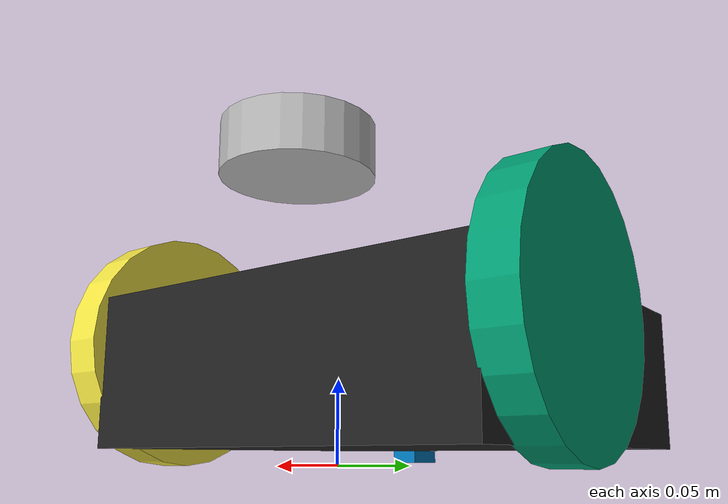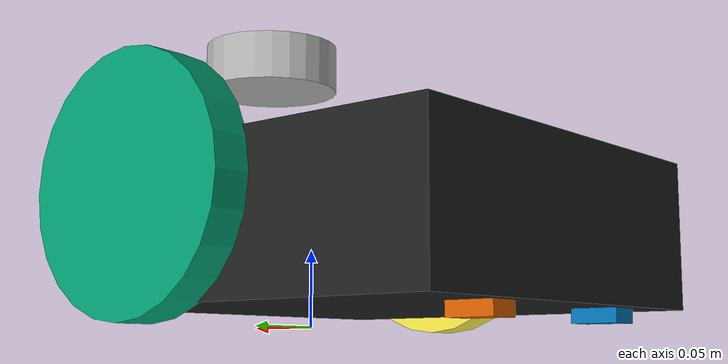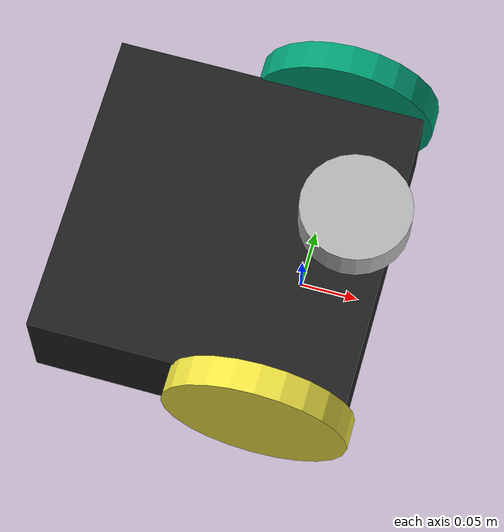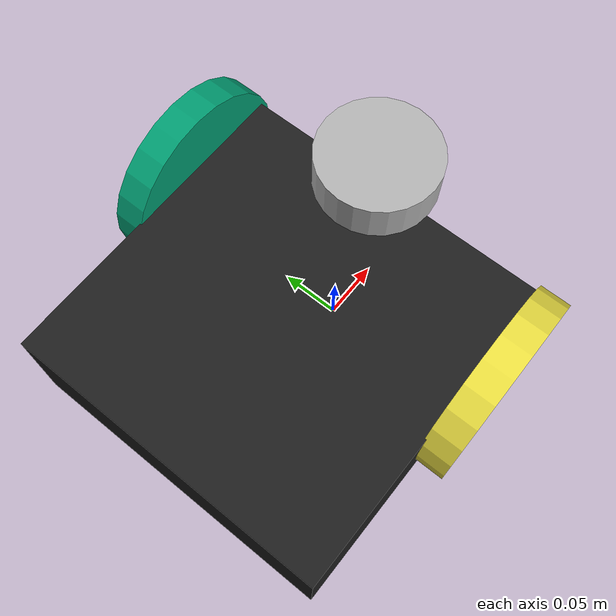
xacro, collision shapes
<?xml version="1.0" ?>
<robot name="turtlebot3_waffle_for_open_manipulator" xmlns:xacro="http://ros.org/wiki/xacro">
  <xacro:include filename="$(find turtlebot3_description)/urdf/common_properties.xacro"/>
  <xacro:include filename="$(find turtlebot3_description)/urdf/turtlebot3_waffle.gazebo.xacro"/>

  <xacro:property name="r200_cam_rgb_px" value="0.005"/>
  <xacro:property name="r200_cam_rgb_py" value="0.018"/>
  <xacro:property name="r200_cam_rgb_pz" value="0.013"/>
  <xacro:property name="r200_cam_depth_offset" value="0.01"/>

  <link name="base_footprint"/>

  <joint name="base_joint" type="fixed">
    <parent link="base_footprint"/>
    <child link="base_link" />
    <origin xyz="0 0 0.010" rpy="0 0 0"/>
  </joint>

  <link name="base_link">
    <visual>
      <origin xyz="-0.064 0 0.0" rpy="0 0 0"/>
      <geometry>
        <mesh filename="package://turtlebot3_description/meshes/bases/waffle_base_for_open_manipulator.stl" scale="0.001 0.001 0.001"/>
      </geometry>
      <material name="light_black"/>
    </visual>

    <collision>
      <origin xyz="-0.064 0 0.047" rpy="0 0 0"/>
      <geometry>
        <box size="0.266 0.266 0.094"/>
      </geometry>
    </collision>

    <inertial>
      <origin xyz="0 0 0" rpy="0 0 0"/>
      <mass value="1.6329594e+00"/>
      <inertia ixx="1.0418769e+05" ixy="1.7327248e+00" ixz="-8.1943898e-01"
               iyy="1.6997442e+05" iyz="3.9896822e+00"
               izz="2.2187284e+05" />
    </inertial>
  </link>

  <joint name="wheel_left_joint" type="continuous">
    <parent link="base_link"/>
    <child link="wheel_left_link"/>
    <origin xyz="0.0 0.144 0.068" rpy="-1.57 0 0"/>
    <axis xyz="0 0 1"/>
  </joint>

  <link name="wheel_left_link">
    <visual>
      <origin xyz="0 0 0" rpy="1.57 0 0"/>
      <geometry>
        <mesh filename="package://turtlebot3_description/meshes/wheels/left_tire.stl" scale="0.0024 0.001 0.0024"/>
      </geometry>
      <material name="dark"/>
    </visual>

    <collision>
      <origin xyz="0 0.001 0" rpy="0 0 0"/>
      <geometry>
        <cylinder length="0.025" radius="0.078"/>
      </geometry>
    </collision>

    <inertial>
      <origin xyz="0 0 0" />
      <mass value="2.8498940e-02" />
      <inertia ixx="1.1175580e-05" ixy="-4.2369783e-11" ixz="-5.9381719e-09"
               iyy="1.1192413e-05" iyz="-1.4400107e-11"
               izz="2.0712558e-05" />
      </inertial>
  </link>

  <joint name="wheel_right_joint" type="continuous">
    <parent link="base_link"/>
    <child link="wheel_right_link"/>
    <origin xyz="0.0 -0.144 0.068" rpy="-1.57 0 0"/>
    <axis xyz="0 0 1"/>
  </joint>

  <link name="wheel_right_link">
    <visual>
      <origin xyz="0 0 0" rpy="1.57 0 0"/>
      <geometry>
        <mesh filename="package://turtlebot3_description/meshes/wheels/right_tire.stl" scale="0.0024 0.001 0.0024"/>
      </geometry>
      <material name="dark"/>
    </visual>

    <collision>
      <origin xyz="0 0.001 0" rpy="0 0 0"/>
      <geometry>
        <cylinder length="0.025" radius="0.078"/>
      </geometry>
    </collision>

    <inertial>
      <origin xyz="0 0 0" />
      <mass value="2.8498940e-02" />
      <inertia ixx="1.1175580e-05" ixy="-4.2369783e-11" ixz="-5.9381719e-09"
               iyy="1.1192413e-05" iyz="-1.4400107e-11"
               izz="2.0712558e-05" />
      </inertial>
  </link>

  <joint name="caster_back_right_joint" type="fixed">
    <parent link="base_link"/>
    <child link="caster_back_right_link"/>
    <origin xyz="-0.177 -0.064 -0.004" rpy="-1.57 0 0"/>
  </joint>

  <link name="caster_back_right_link">
    <collision>
      <origin xyz="0 0.001 0" rpy="0 0 0"/>
      <geometry>
        <box size="0.030 0.009 0.020"/>
      </geometry>
    </collision>

    <inertial>
      <origin xyz="0 0 0" />
      <mass value="0.005" />
      <inertia ixx="0.001" ixy="0.0" ixz="0.0"
               iyy="0.001" iyz="0.0"
               izz="0.001" />
    </inertial>
  </link>

  <joint name="caster_back_left_joint" type="fixed">
    <parent link="base_link"/>
    <child link="caster_back_left_link"/>
    <origin xyz="-0.177 0.064 -0.004" rpy="-1.57 0 0"/>
  </joint>

  <link name="caster_back_left_link">
    <collision>
      <origin xyz="0 0.001 0" rpy="0 0 0"/>
      <geometry>
        <box size="0.030 0.009 0.020"/>
      </geometry>
    </collision>

    <inertial>
      <origin xyz="0 0 0" />
      <mass value="0.005" />
      <inertia ixx="0.001" ixy="0.0" ixz="0.0"
               iyy="0.001" iyz="0.0"
               izz="0.001" />
    </inertial>
  </link>

  <joint name="imu_joint" type="fixed">
    <parent link="base_link"/>
    <child link="imu_link"/>
    <origin xyz="0.0 0 0.068" rpy="0 0 0"/>
  </joint>

  <link name="imu_link"/>

  <joint name="scan_joint" type="fixed">
    <parent link="base_link"/>
    <child link="base_scan"/>
    <origin xyz="0.024 0 0.175" rpy="0 0 0"/>
  </joint>

  <link name="base_scan">
    <visual>
      <origin xyz="0 0 0.0" rpy="0 0 0"/>
      <geometry>
        <mesh filename="package://turtlebot3_description/meshes/sensors/lds.stl" scale="0.001 0.001 0.001"/>
      </geometry>
      <material name="dark"/>
    </visual>

    <collision>
      <origin xyz="0.015 0 -0.0065" rpy="0 0 0"/>
      <geometry>
        <cylinder length="0.0315" radius="0.045"/>
      </geometry>
    </collision>

    <inertial>
      <mass value="0.114" />
      <origin xyz="0 0 0" />
      <inertia ixx="0.001" ixy="0.0" ixz="0.0"
               iyy="0.001" iyz="0.0"
               izz="0.001" />
    </inertial>
  </link>

</robot>
